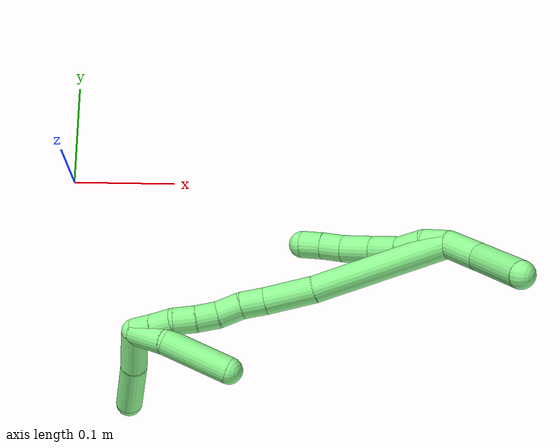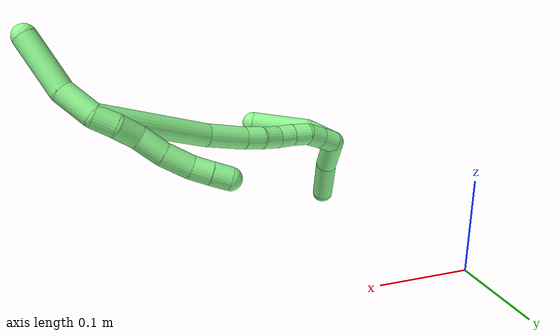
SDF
<sdf version="1.7">
 <world name="default">
  <model name="13">
   <static>0</static>
   <link name="13">
    <collision name="collision-cylinder-e_1_2_8">
     <pose>-0.001089 -0.001057 -0.011495 3.04986 -0.094092 -1.59625</pose>
     <geometry><cylinder><radius>0.0125</radius><length>0.023189</length></cylinder></geometry>
     <surface>
      <friction><ode><mu>1.16</mu><mu2>1.16</mu2><slip1>0</slip1><slip2>0</slip2></ode></friction>
      <contact><ode><kp>1e+06</kp><kd>1</kd><max_vel>0</max_vel><min_depth>0.001</min_depth></ode></contact>
     </surface>
    </collision>
    <visual name="visual-cylinder-e_1_2_8">
     <pose>-0.001089 -0.001057 -0.011495 3.04986 -0.094092 -1.59625</pose>
     <geometry><cylinder><radius>0.0125</radius><length>0.023189</length></cylinder></geometry>
     <material><ambient>0.564706 0.984314 0.572549 1</ambient></material>
    </visual>
    <collision name="collision-cylinder-e_2_8_9">
     <pose>-0.003274 -0.006946 -0.034253 2.7364 -0.089169 -0.427741</pose>
     <geometry><cylinder><radius>0.0125</radius><length>0.02461</length></cylinder></geometry>
     <surface>
      <friction><ode><mu>1.16</mu><mu2>1.16</mu2><slip1>0</slip1><slip2>0</slip2></ode></friction>
      <contact><ode><kp>1e+06</kp><kd>1</kd><max_vel>0</max_vel><min_depth>0.001</min_depth></ode></contact>
     </surface>
    </collision>
    <visual name="visual-cylinder-e_2_8_9">
     <pose>-0.003274 -0.006946 -0.034253 2.7364 -0.089169 -0.427741</pose>
     <geometry><cylinder><radius>0.0125</radius><length>0.02461</length></cylinder></geometry>
     <material><ambient>0.564706 0.984314 0.572549 1</ambient></material>
    </visual>
    <collision name="collision-cylinder-e_3_9_10">
     <pose>-0.003048 -0.013778 -0.060068 3.00493 0.089768 1.16154</pose>
     <geometry><cylinder><radius>0.0125</radius><length>0.029496</length></cylinder></geometry>
     <surface>
      <friction><ode><mu>1.16</mu><mu2>1.16</mu2><slip1>0</slip1><slip2>0</slip2></ode></friction>
      <contact><ode><kp>1e+06</kp><kd>1</kd><max_vel>0</max_vel><min_depth>0.001</min_depth></ode></contact>
     </surface>
    </collision>
    <visual name="visual-cylinder-e_3_9_10">
     <pose>-0.003048 -0.013778 -0.060068 3.00493 0.089768 1.16154</pose>
     <geometry><cylinder><radius>0.0125</radius><length>0.029496</length></cylinder></geometry>
     <material><ambient>0.564706 0.984314 0.572549 1</ambient></material>
    </visual>
    <collision name="collision-cylinder-e_4_10_11">
     <pose>-0.002806 -0.017486 -0.090003 3.03114 -0.069692 -1.12523</pose>
     <geometry><cylinder><radius>0.0125</radius><length>0.031031</length></cylinder></geometry>
     <surface>
      <friction><ode><mu>1.16</mu><mu2>1.16</mu2><slip1>0</slip1><slip2>0</slip2></ode></friction>
      <contact><ode><kp>1e+06</kp><kd>1</kd><max_vel>0</max_vel><min_depth>0.001</min_depth></ode></contact>
     </surface>
    </collision>
    <visual name="visual-cylinder-e_4_10_11">
     <pose>-0.002806 -0.017486 -0.090003 3.03114 -0.069692 -1.12523</pose>
     <geometry><cylinder><radius>0.0125</radius><length>0.031031</length></cylinder></geometry>
     <material><ambient>0.564706 0.984314 0.572549 1</ambient></material>
    </visual>
    <collision name="collision-cylinder-e_5_11_12">
     <pose>-0.005982 -0.019134 -0.115703 -3.13599 -0.200402 3.08589</pose>
     <geometry><cylinder><radius>0.0125</radius><length>0.021054</length></cylinder></geometry>
     <surface>
      <friction><ode><mu>1.16</mu><mu2>1.16</mu2><slip1>0</slip1><slip2>0</slip2></ode></friction>
      <contact><ode><kp>1e+06</kp><kd>1</kd><max_vel>0</max_vel><min_depth>0.001</min_depth></ode></contact>
     </surface>
    </collision>
    <visual name="visual-cylinder-e_5_11_12">
     <pose>-0.005982 -0.019134 -0.115703 -3.13599 -0.200402 3.08589</pose>
     <geometry><cylinder><radius>0.0125</radius><length>0.021054</length></cylinder></geometry>
     <material><ambient>0.564706 0.984314 0.572549 1</ambient></material>
    </visual>
    <collision name="collision-cylinder-e_6_12_6">
     <pose>-0.010391 -0.01958 -0.136054 3.09139 -0.226264 -2.70659</pose>
     <geometry><cylinder><radius>0.0125</radius><length>0.02062</length></cylinder></geometry>
     <surface>
      <friction><ode><mu>1.16</mu><mu2>1.16</mu2><slip1>0</slip1><slip2>0</slip2></ode></friction>
      <contact><ode><kp>1e+06</kp><kd>1</kd><max_vel>0</max_vel><min_depth>0.001</min_depth></ode></contact>
     </surface>
    </collision>
    <visual name="visual-cylinder-e_6_12_6">
     <pose>-0.010391 -0.01958 -0.136054 3.09139 -0.226264 -2.70659</pose>
     <geometry><cylinder><radius>0.0125</radius><length>0.02062</length></cylinder></geometry>
     <material><ambient>0.564706 0.984314 0.572549 1</ambient></material>
    </visual>
    <collision name="collision-cylinder-e_1_2_13">
     <pose>-0.003751 -0.002771 0.018064 0.15219 -0.202432 -0.015486</pose>
     <geometry><cylinder><radius>0.0125</radius><length>0.037313</length></cylinder></geometry>
     <surface>
      <friction><ode><mu>1.16</mu><mu2>1.16</mu2><slip1>0</slip1><slip2>0</slip2></ode></friction>
      <contact><ode><kp>1e+06</kp><kd>1</kd><max_vel>0</max_vel><min_depth>0.001</min_depth></ode></contact>
     </surface>
    </collision>
    <visual name="visual-cylinder-e_1_2_13">
     <pose>-0.003751 -0.002771 0.018064 0.15219 -0.202432 -0.015486</pose>
     <geometry><cylinder><radius>0.0125</radius><length>0.037313</length></cylinder></geometry>
     <material><ambient>0.564706 0.984314 0.572549 1</ambient></material>
    </visual>
    <collision name="collision-cylinder-e_2_13_5">
     <pose>-0.022402 -0.007136 0.063658 0.057878 -0.495381 -0.01464</pose>
     <geometry><cylinder><radius>0.0125</radius><length>0.062687</length></cylinder></geometry>
     <surface>
      <friction><ode><mu>1.16</mu><mu2>1.16</mu2><slip1>0</slip1><slip2>0</slip2></ode></friction>
      <contact><ode><kp>1e+06</kp><kd>1</kd><max_vel>0</max_vel><min_depth>0.001</min_depth></ode></contact>
     </surface>
    </collision>
    <visual name="visual-cylinder-e_2_13_5">
     <pose>-0.022402 -0.007136 0.063658 0.057878 -0.495381 -0.01464</pose>
     <geometry><cylinder><radius>0.0125</radius><length>0.062687</length></cylinder></geometry>
     <material><ambient>0.564706 0.984314 0.572549 1</ambient></material>
    </visual>
    <collision name="collision-cylinder-e_1_2_14">
     <pose>-0.02374 -0.02586 -0.053094 2.68835 -0.382224 -1.39623</pose>
     <geometry><cylinder><radius>0.0125</radius><length>0.127299</length></cylinder></geometry>
     <surface>
      <friction><ode><mu>1.16</mu><mu2>1.16</mu2><slip1>0</slip1><slip2>0</slip2></ode></friction>
      <contact><ode><kp>1e+06</kp><kd>1</kd><max_vel>0</max_vel><min_depth>0.001</min_depth></ode></contact>
     </surface>
    </collision>
    <visual name="visual-cylinder-e_1_2_14">
     <pose>-0.02374 -0.02586 -0.053094 2.68835 -0.382224 -1.39623</pose>
     <geometry><cylinder><radius>0.0125</radius><length>0.127299</length></cylinder></geometry>
     <material><ambient>0.564706 0.984314 0.572549 1</ambient></material>
    </visual>
    <collision name="collision-cylinder-e_2_14_15">
     <pose>-0.057842 -0.058959 -0.125627 2.7851 -0.463237 -1.83697</pose>
     <geometry><cylinder><radius>0.0125</radius><length>0.046375</length></cylinder></geometry>
     <surface>
      <friction><ode><mu>1.16</mu><mu2>1.16</mu2><slip1>0</slip1><slip2>0</slip2></ode></friction>
      <contact><ode><kp>1e+06</kp><kd>1</kd><max_vel>0</max_vel><min_depth>0.001</min_depth></ode></contact>
     </surface>
    </collision>
    <visual name="visual-cylinder-e_2_14_15">
     <pose>-0.057842 -0.058959 -0.125627 2.7851 -0.463237 -1.83697</pose>
     <geometry><cylinder><radius>0.0125</radius><length>0.046375</length></cylinder></geometry>
     <material><ambient>0.564706 0.984314 0.572549 1</ambient></material>
    </visual>
    <collision name="collision-cylinder-e_3_15_16">
     <pose>-0.073897 -0.069064 -0.154322 2.84132 -0.531265 -2.12668</pose>
     <geometry><cylinder><radius>0.0125</radius><length>0.022475</length></cylinder></geometry>
     <surface>
      <friction><ode><mu>1.16</mu><mu2>1.16</mu2><slip1>0</slip1><slip2>0</slip2></ode></friction>
      <contact><ode><kp>1e+06</kp><kd>1</kd><max_vel>0</max_vel><min_depth>0.001</min_depth></ode></contact>
     </surface>
    </collision>
    <visual name="visual-cylinder-e_3_15_16">
     <pose>-0.073897 -0.069064 -0.154322 2.84132 -0.531265 -2.12668</pose>
     <geometry><cylinder><radius>0.0125</radius><length>0.022475</length></cylinder></geometry>
     <material><ambient>0.564706 0.984314 0.572549 1</ambient></material>
    </visual>
    <collision name="collision-cylinder-e_4_16_17">
     <pose>-0.085544 -0.076821 -0.171866 2.60841 -0.554034 -1.61111</pose>
     <geometry><cylinder><radius>0.0125</radius><length>0.022633</length></cylinder></geometry>
     <surface>
      <friction><ode><mu>1.16</mu><mu2>1.16</mu2><slip1>0</slip1><slip2>0</slip2></ode></friction>
      <contact><ode><kp>1e+06</kp><kd>1</kd><max_vel>0</max_vel><min_depth>0.001</min_depth></ode></contact>
     </surface>
    </collision>
    <visual name="visual-cylinder-e_4_16_17">
     <pose>-0.085544 -0.076821 -0.171866 2.60841 -0.554034 -1.61111</pose>
     <geometry><cylinder><radius>0.0125</radius><length>0.022633</length></cylinder></geometry>
     <material><ambient>0.564706 0.984314 0.572549 1</ambient></material>
    </visual>
    <collision name="collision-cylinder-e_5_17_18">
     <pose>-0.097624 -0.084107 -0.187861 2.84032 -0.649296 -2.29422</pose>
     <geometry><cylinder><radius>0.0125</radius><length>0.020266</length></cylinder></geometry>
     <surface>
      <friction><ode><mu>1.16</mu><mu2>1.16</mu2><slip1>0</slip1><slip2>0</slip2></ode></friction>
      <contact><ode><kp>1e+06</kp><kd>1</kd><max_vel>0</max_vel><min_depth>0.001</min_depth></ode></contact>
     </surface>
    </collision>
    <visual name="visual-cylinder-e_5_17_18">
     <pose>-0.097624 -0.084107 -0.187861 2.84032 -0.649296 -2.29422</pose>
     <geometry><cylinder><radius>0.0125</radius><length>0.020266</length></cylinder></geometry>
     <material><ambient>0.564706 0.984314 0.572549 1</ambient></material>
    </visual>
    <collision name="collision-cylinder-e_6_18_19">
     <pose>-0.109516 -0.088197 -0.204009 2.94345 -0.590074 -2.50939</pose>
     <geometry><cylinder><radius>0.0125</radius><length>0.020722</length></cylinder></geometry>
     <surface>
      <friction><ode><mu>1.16</mu><mu2>1.16</mu2><slip1>0</slip1><slip2>0</slip2></ode></friction>
      <contact><ode><kp>1e+06</kp><kd>1</kd><max_vel>0</max_vel><min_depth>0.001</min_depth></ode></contact>
     </surface>
    </collision>
    <visual name="visual-cylinder-e_6_18_19">
     <pose>-0.109516 -0.088197 -0.204009 2.94345 -0.590074 -2.50939</pose>
     <geometry><cylinder><radius>0.0125</radius><length>0.020722</length></cylinder></geometry>
     <material><ambient>0.564706 0.984314 0.572549 1</ambient></material>
    </visual>
    <collision name="collision-cylinder-e_7_19_20">
     <pose>-0.118396 -0.093671 -0.221253 2.7361 -0.314345 -1.31351</pose>
     <geometry><cylinder><radius>0.0125</radius><length>0.020149</length></cylinder></geometry>
     <surface>
      <friction><ode><mu>1.16</mu><mu2>1.16</mu2><slip1>0</slip1><slip2>0</slip2></ode></friction>
      <contact><ode><kp>1e+06</kp><kd>1</kd><max_vel>0</max_vel><min_depth>0.001</min_depth></ode></contact>
     </surface>
    </collision>
    <visual name="visual-cylinder-e_7_19_20">
     <pose>-0.118396 -0.093671 -0.221253 2.7361 -0.314345 -1.31351</pose>
     <geometry><cylinder><radius>0.0125</radius><length>0.020149</length></cylinder></geometry>
     <material><ambient>0.564706 0.984314 0.572549 1</ambient></material>
    </visual>
    <collision name="collision-cylinder-e_8_20_1">
     <pose>-0.124163 -0.100804 -0.239141 2.788 -0.267307 -1.29027</pose>
     <geometry><cylinder><radius>0.0125</radius><length>0.02008</length></cylinder></geometry>
     <surface>
      <friction><ode><mu>1.16</mu><mu2>1.16</mu2><slip1>0</slip1><slip2>0</slip2></ode></friction>
      <contact><ode><kp>1e+06</kp><kd>1</kd><max_vel>0</max_vel><min_depth>0.001</min_depth></ode></contact>
     </surface>
    </collision>
    <visual name="visual-cylinder-e_8_20_1">
     <pose>-0.124163 -0.100804 -0.239141 2.788 -0.267307 -1.29027</pose>
     <geometry><cylinder><radius>0.0125</radius><length>0.02008</length></cylinder></geometry>
     <material><ambient>0.564706 0.984314 0.572549 1</ambient></material>
    </visual>
    <collision name="collision-cylinder-e_1_1_21">
     <pose>-0.125851 -0.105709 -0.230928 0.089482 0.05543 0.002482</pose>
     <geometry><cylinder><radius>0.0125</radius><length>0.034787</length></cylinder></geometry>
     <surface>
      <friction><ode><mu>1.16</mu><mu2>1.16</mu2><slip1>0</slip1><slip2>0</slip2></ode></friction>
      <contact><ode><kp>1e+06</kp><kd>1</kd><max_vel>0</max_vel><min_depth>0.001</min_depth></ode></contact>
     </surface>
    </collision>
    <visual name="visual-cylinder-e_1_1_21">
     <pose>-0.125851 -0.105709 -0.230928 0.089482 0.05543 0.002482</pose>
     <geometry><cylinder><radius>0.0125</radius><length>0.034787</length></cylinder></geometry>
     <material><ambient>0.564706 0.984314 0.572549 1</ambient></material>
    </visual>
    <collision name="collision-cylinder-e_2_21_4">
     <pose>-0.115135 -0.116835 -0.184027 0.31279 0.303755 0.048259</pose>
     <geometry><cylinder><radius>0.0125</radius><length>0.065213</length></cylinder></geometry>
     <surface>
      <friction><ode><mu>1.16</mu><mu2>1.16</mu2><slip1>0</slip1><slip2>0</slip2></ode></friction>
      <contact><ode><kp>1e+06</kp><kd>1</kd><max_vel>0</max_vel><min_depth>0.001</min_depth></ode></contact>
     </surface>
    </collision>
    <visual name="visual-cylinder-e_2_21_4">
     <pose>-0.115135 -0.116835 -0.184027 0.31279 0.303755 0.048259</pose>
     <geometry><cylinder><radius>0.0125</radius><length>0.065213</length></cylinder></geometry>
     <material><ambient>0.564706 0.984314 0.572549 1</ambient></material>
    </visual>
    <collision name="collision-cylinder-e_1_1_22">
     <pose>-0.118243 -0.123143 -0.255154 1.92068 0.40115 0.565634</pose>
     <geometry><cylinder><radius>0.0125</radius><length>0.043907</length></cylinder></geometry>
     <surface>
      <friction><ode><mu>1.16</mu><mu2>1.16</mu2><slip1>0</slip1><slip2>0</slip2></ode></friction>
      <contact><ode><kp>1e+06</kp><kd>1</kd><max_vel>0</max_vel><min_depth>0.001</min_depth></ode></contact>
     </surface>
    </collision>
    <visual name="visual-cylinder-e_1_1_22">
     <pose>-0.118243 -0.123143 -0.255154 1.92068 0.40115 0.565634</pose>
     <geometry><cylinder><radius>0.0125</radius><length>0.043907</length></cylinder></geometry>
     <material><ambient>0.564706 0.984314 0.572549 1</ambient></material>
    </visual>
    <collision name="collision-cylinder-e_2_22_3">
     <pose>-0.097895 -0.164654 -0.273938 2.05533 0.433271 0.699194</pose>
     <geometry><cylinder><radius>0.0125</radius><length>0.056093</length></cylinder></geometry>
     <surface>
      <friction><ode><mu>1.16</mu><mu2>1.16</mu2><slip1>0</slip1><slip2>0</slip2></ode></friction>
      <contact><ode><kp>1e+06</kp><kd>1</kd><max_vel>0</max_vel><min_depth>0.001</min_depth></ode></contact>
     </surface>
    </collision>
    <visual name="visual-cylinder-e_2_22_3">
     <pose>-0.097895 -0.164654 -0.273938 2.05533 0.433271 0.699194</pose>
     <geometry><cylinder><radius>0.0125</radius><length>0.056093</length></cylinder></geometry>
     <material><ambient>0.564706 0.984314 0.572549 1</ambient></material>
    </visual>
    <collision name="collision-sphere-3">
     <pose>-0.08612 -0.187179 -0.285795 0 -0 0</pose>
     <geometry><sphere><radius>0.0125</radius></sphere></geometry>
     <surface>
      <friction><ode><mu>1.16</mu><mu2>1.16</mu2><slip1>0</slip1><slip2>0</slip2></ode></friction>
      <contact><ode><kp>1e+06</kp><kd>1</kd><max_vel>0</max_vel><min_depth>0.001</min_depth></ode></contact>
     </surface>
    </collision>
    <visual name="visual-sphere-3">
     <pose>-0.08612 -0.187179 -0.285795 0 -0 0</pose>
     <geometry><sphere><radius>0.0125</radius></sphere></geometry>
     <material><ambient>0.564706 0.984314 0.572549 1</ambient></material>
    </visual>
    <collision name="collision-sphere-22">
     <pose>-0.10967 -0.142129 -0.262082 0 -0 0</pose>
     <geometry><sphere><radius>0.0125</radius></sphere></geometry>
     <surface>
      <friction><ode><mu>1.16</mu><mu2>1.16</mu2><slip1>0</slip1><slip2>0</slip2></ode></friction>
      <contact><ode><kp>1e+06</kp><kd>1</kd><max_vel>0</max_vel><min_depth>0.001</min_depth></ode></contact>
     </surface>
    </collision>
    <visual name="visual-sphere-22">
     <pose>-0.10967 -0.142129 -0.262082 0 -0 0</pose>
     <geometry><sphere><radius>0.0125</radius></sphere></geometry>
     <material><ambient>0.564706 0.984314 0.572549 1</ambient></material>
    </visual>
    <collision name="collision-sphere-4">
     <pose>-0.105382 -0.126409 -0.154423 0 -0 0</pose>
     <geometry><sphere><radius>0.0125</radius></sphere></geometry>
     <surface>
      <friction><ode><mu>1.16</mu><mu2>1.16</mu2><slip1>0</slip1><slip2>0</slip2></ode></friction>
      <contact><ode><kp>1e+06</kp><kd>1</kd><max_vel>0</max_vel><min_depth>0.001</min_depth></ode></contact>
     </surface>
    </collision>
    <visual name="visual-sphere-4">
     <pose>-0.105382 -0.126409 -0.154423 0 -0 0</pose>
     <geometry><sphere><radius>0.0125</radius></sphere></geometry>
     <material><ambient>0.564706 0.984314 0.572549 1</ambient></material>
    </visual>
    <collision name="collision-sphere-21">
     <pose>-0.124888 -0.107261 -0.213631 0 -0 0</pose>
     <geometry><sphere><radius>0.0125</radius></sphere></geometry>
     <surface>
      <friction><ode><mu>1.16</mu><mu2>1.16</mu2><slip1>0</slip1><slip2>0</slip2></ode></friction>
      <contact><ode><kp>1e+06</kp><kd>1</kd><max_vel>0</max_vel><min_depth>0.001</min_depth></ode></contact>
     </surface>
    </collision>
    <visual name="visual-sphere-21">
     <pose>-0.124888 -0.107261 -0.213631 0 -0 0</pose>
     <geometry><sphere><radius>0.0125</radius></sphere></geometry>
     <material><ambient>0.564706 0.984314 0.572549 1</ambient></material>
    </visual>
    <collision name="collision-sphere-1">
     <pose>-0.126815 -0.104157 -0.248226 0 -0 0</pose>
     <geometry><sphere><radius>0.0125</radius></sphere></geometry>
     <surface>
      <friction><ode><mu>1.16</mu><mu2>1.16</mu2><slip1>0</slip1><slip2>0</slip2></ode></friction>
      <contact><ode><kp>1e+06</kp><kd>1</kd><max_vel>0</max_vel><min_depth>0.001</min_depth></ode></contact>
     </surface>
    </collision>
    <visual name="visual-sphere-1">
     <pose>-0.126815 -0.104157 -0.248226 0 -0 0</pose>
     <geometry><sphere><radius>0.0125</radius></sphere></geometry>
     <material><ambient>0.564706 0.984314 0.572549 1</ambient></material>
    </visual>
    <collision name="collision-sphere-12">
     <pose>-0.008078 -0.019076 -0.126019 0 -0 0</pose>
     <geometry><sphere><radius>0.0125</radius></sphere></geometry>
     <surface>
      <friction><ode><mu>1.16</mu><mu2>1.16</mu2><slip1>0</slip1><slip2>0</slip2></ode></friction>
      <contact><ode><kp>1e+06</kp><kd>1</kd><max_vel>0</max_vel><min_depth>0.001</min_depth></ode></contact>
     </surface>
    </collision>
    <visual name="visual-sphere-12">
     <pose>-0.008078 -0.019076 -0.126019 0 -0 0</pose>
     <geometry><sphere><radius>0.0125</radius></sphere></geometry>
     <material><ambient>0.564706 0.984314 0.572549 1</ambient></material>
    </visual>
    <collision name="collision-sphere-11">
     <pose>-0.003887 -0.019192 -0.105387 0 -0 0</pose>
     <geometry><sphere><radius>0.0125</radius></sphere></geometry>
     <surface>
      <friction><ode><mu>1.16</mu><mu2>1.16</mu2><slip1>0</slip1><slip2>0</slip2></ode></friction>
      <contact><ode><kp>1e+06</kp><kd>1</kd><max_vel>0</max_vel><min_depth>0.001</min_depth></ode></contact>
     </surface>
    </collision>
    <visual name="visual-sphere-11">
     <pose>-0.003887 -0.019192 -0.105387 0 -0 0</pose>
     <geometry><sphere><radius>0.0125</radius></sphere></geometry>
     <material><ambient>0.564706 0.984314 0.572549 1</ambient></material>
    </visual>
    <collision name="collision-sphere-10">
     <pose>-0.001726 -0.01578 -0.07462 0 -0 0</pose>
     <geometry><sphere><radius>0.0125</radius></sphere></geometry>
     <surface>
      <friction><ode><mu>1.16</mu><mu2>1.16</mu2><slip1>0</slip1><slip2>0</slip2></ode></friction>
      <contact><ode><kp>1e+06</kp><kd>1</kd><max_vel>0</max_vel><min_depth>0.001</min_depth></ode></contact>
     </surface>
    </collision>
    <visual name="visual-sphere-10">
     <pose>-0.001726 -0.01578 -0.07462 0 -0 0</pose>
     <geometry><sphere><radius>0.0125</radius></sphere></geometry>
     <material><ambient>0.564706 0.984314 0.572549 1</ambient></material>
    </visual>
    <collision name="collision-sphere-9">
     <pose>-0.00437 -0.011777 -0.045516 0 -0 0</pose>
     <geometry><sphere><radius>0.0125</radius></sphere></geometry>
     <surface>
      <friction><ode><mu>1.16</mu><mu2>1.16</mu2><slip1>0</slip1><slip2>0</slip2></ode></friction>
      <contact><ode><kp>1e+06</kp><kd>1</kd><max_vel>0</max_vel><min_depth>0.001</min_depth></ode></contact>
     </surface>
    </collision>
    <visual name="visual-sphere-9">
     <pose>-0.00437 -0.011777 -0.045516 0 -0 0</pose>
     <geometry><sphere><radius>0.0125</radius></sphere></geometry>
     <material><ambient>0.564706 0.984314 0.572549 1</ambient></material>
    </visual>
    <collision name="collision-sphere-2">
     <geometry><sphere><radius>0.0125</radius></sphere></geometry>
     <surface>
      <friction><ode><mu>1.16</mu><mu2>1.16</mu2><slip1>0</slip1><slip2>0</slip2></ode></friction>
      <contact><ode><kp>1e+06</kp><kd>1</kd><max_vel>0</max_vel><min_depth>0.001</min_depth></ode></contact>
     </surface>
    </collision>
    <visual name="visual-sphere-2">
     <geometry><sphere><radius>0.0125</radius></sphere></geometry>
     <material><ambient>0.564706 0.984314 0.572549 1</ambient></material>
    </visual>
    <collision name="collision-sphere-19">
     <pose>-0.115281 -0.089892 -0.212449 0 -0 0</pose>
     <geometry><sphere><radius>0.0125</radius></sphere></geometry>
     <surface>
      <friction><ode><mu>1.16</mu><mu2>1.16</mu2><slip1>0</slip1><slip2>0</slip2></ode></friction>
      <contact><ode><kp>1e+06</kp><kd>1</kd><max_vel>0</max_vel><min_depth>0.001</min_depth></ode></contact>
     </surface>
    </collision>
    <visual name="visual-sphere-19">
     <pose>-0.115281 -0.089892 -0.212449 0 -0 0</pose>
     <geometry><sphere><radius>0.0125</radius></sphere></geometry>
     <material><ambient>0.564706 0.984314 0.572549 1</ambient></material>
    </visual>
    <collision name="collision-sphere-8">
     <pose>-0.002179 -0.002115 -0.022989 0 -0 0</pose>
     <geometry><sphere><radius>0.0125</radius></sphere></geometry>
     <surface>
      <friction><ode><mu>1.16</mu><mu2>1.16</mu2><slip1>0</slip1><slip2>0</slip2></ode></friction>
      <contact><ode><kp>1e+06</kp><kd>1</kd><max_vel>0</max_vel><min_depth>0.001</min_depth></ode></contact>
     </surface>
    </collision>
    <visual name="visual-sphere-8">
     <pose>-0.002179 -0.002115 -0.022989 0 -0 0</pose>
     <geometry><sphere><radius>0.0125</radius></sphere></geometry>
     <material><ambient>0.564706 0.984314 0.572549 1</ambient></material>
    </visual>
    <collision name="collision-sphere-6">
     <pose>-0.012704 -0.020085 -0.146089 0 -0 0</pose>
     <geometry><sphere><radius>0.0125</radius></sphere></geometry>
     <surface>
      <friction><ode><mu>1.16</mu><mu2>1.16</mu2><slip1>0</slip1><slip2>0</slip2></ode></friction>
      <contact><ode><kp>1e+06</kp><kd>1</kd><max_vel>0</max_vel><min_depth>0.001</min_depth></ode></contact>
     </surface>
    </collision>
    <visual name="visual-sphere-6">
     <pose>-0.012704 -0.020085 -0.146089 0 -0 0</pose>
     <geometry><sphere><radius>0.0125</radius></sphere></geometry>
     <material><ambient>0.564706 0.984314 0.572549 1</ambient></material>
    </visual>
    <collision name="collision-sphere-13">
     <pose>-0.007502 -0.005541 0.036129 0 -0 0</pose>
     <geometry><sphere><radius>0.0125</radius></sphere></geometry>
     <surface>
      <friction><ode><mu>1.16</mu><mu2>1.16</mu2><slip1>0</slip1><slip2>0</slip2></ode></friction>
      <contact><ode><kp>1e+06</kp><kd>1</kd><max_vel>0</max_vel><min_depth>0.001</min_depth></ode></contact>
     </surface>
    </collision>
    <visual name="visual-sphere-13">
     <pose>-0.007502 -0.005541 0.036129 0 -0 0</pose>
     <geometry><sphere><radius>0.0125</radius></sphere></geometry>
     <material><ambient>0.564706 0.984314 0.572549 1</ambient></material>
    </visual>
    <collision name="collision-sphere-5">
     <pose>-0.037301 -0.008732 0.091188 0 -0 0</pose>
     <geometry><sphere><radius>0.0125</radius></sphere></geometry>
     <surface>
      <friction><ode><mu>1.16</mu><mu2>1.16</mu2><slip1>0</slip1><slip2>0</slip2></ode></friction>
      <contact><ode><kp>1e+06</kp><kd>1</kd><max_vel>0</max_vel><min_depth>0.001</min_depth></ode></contact>
     </surface>
    </collision>
    <visual name="visual-sphere-5">
     <pose>-0.037301 -0.008732 0.091188 0 -0 0</pose>
     <geometry><sphere><radius>0.0125</radius></sphere></geometry>
     <material><ambient>0.564706 0.984314 0.572549 1</ambient></material>
    </visual>
    <collision name="collision-sphere-14">
     <pose>-0.047481 -0.051719 -0.106188 0 -0 0</pose>
     <geometry><sphere><radius>0.0125</radius></sphere></geometry>
     <surface>
      <friction><ode><mu>1.16</mu><mu2>1.16</mu2><slip1>0</slip1><slip2>0</slip2></ode></friction>
      <contact><ode><kp>1e+06</kp><kd>1</kd><max_vel>0</max_vel><min_depth>0.001</min_depth></ode></contact>
     </surface>
    </collision>
    <visual name="visual-sphere-14">
     <pose>-0.047481 -0.051719 -0.106188 0 -0 0</pose>
     <geometry><sphere><radius>0.0125</radius></sphere></geometry>
     <material><ambient>0.564706 0.984314 0.572549 1</ambient></material>
    </visual>
    <collision name="collision-sphere-15">
     <pose>-0.068203 -0.066198 -0.145067 0 -0 0</pose>
     <geometry><sphere><radius>0.0125</radius></sphere></geometry>
     <surface>
      <friction><ode><mu>1.16</mu><mu2>1.16</mu2><slip1>0</slip1><slip2>0</slip2></ode></friction>
      <contact><ode><kp>1e+06</kp><kd>1</kd><max_vel>0</max_vel><min_depth>0.001</min_depth></ode></contact>
     </surface>
    </collision>
    <visual name="visual-sphere-15">
     <pose>-0.068203 -0.066198 -0.145067 0 -0 0</pose>
     <geometry><sphere><radius>0.0125</radius></sphere></geometry>
     <material><ambient>0.564706 0.984314 0.572549 1</ambient></material>
    </visual>
    <collision name="collision-sphere-16">
     <pose>-0.07959 -0.07193 -0.163578 0 -0 0</pose>
     <geometry><sphere><radius>0.0125</radius></sphere></geometry>
     <surface>
      <friction><ode><mu>1.16</mu><mu2>1.16</mu2><slip1>0</slip1><slip2>0</slip2></ode></friction>
      <contact><ode><kp>1e+06</kp><kd>1</kd><max_vel>0</max_vel><min_depth>0.001</min_depth></ode></contact>
     </surface>
    </collision>
    <visual name="visual-sphere-16">
     <pose>-0.07959 -0.07193 -0.163578 0 -0 0</pose>
     <geometry><sphere><radius>0.0125</radius></sphere></geometry>
     <material><ambient>0.564706 0.984314 0.572549 1</ambient></material>
    </visual>
    <collision name="collision-sphere-17">
     <pose>-0.091498 -0.081712 -0.180153 0 -0 0</pose>
     <geometry><sphere><radius>0.0125</radius></sphere></geometry>
     <surface>
      <friction><ode><mu>1.16</mu><mu2>1.16</mu2><slip1>0</slip1><slip2>0</slip2></ode></friction>
      <contact><ode><kp>1e+06</kp><kd>1</kd><max_vel>0</max_vel><min_depth>0.001</min_depth></ode></contact>
     </surface>
    </collision>
    <visual name="visual-sphere-17">
     <pose>-0.091498 -0.081712 -0.180153 0 -0 0</pose>
     <geometry><sphere><radius>0.0125</radius></sphere></geometry>
     <material><ambient>0.564706 0.984314 0.572549 1</ambient></material>
    </visual>
    <collision name="collision-sphere-18">
     <pose>-0.103751 -0.086502 -0.195568 0 -0 0</pose>
     <geometry><sphere><radius>0.0125</radius></sphere></geometry>
     <surface>
      <friction><ode><mu>1.16</mu><mu2>1.16</mu2><slip1>0</slip1><slip2>0</slip2></ode></friction>
      <contact><ode><kp>1e+06</kp><kd>1</kd><max_vel>0</max_vel><min_depth>0.001</min_depth></ode></contact>
     </surface>
    </collision>
    <visual name="visual-sphere-18">
     <pose>-0.103751 -0.086502 -0.195568 0 -0 0</pose>
     <geometry><sphere><radius>0.0125</radius></sphere></geometry>
     <material><ambient>0.564706 0.984314 0.572549 1</ambient></material>
    </visual>
    <collision name="collision-sphere-20">
     <pose>-0.121511 -0.09745 -0.230057 0 -0 0</pose>
     <geometry><sphere><radius>0.0125</radius></sphere></geometry>
     <surface>
      <friction><ode><mu>1.16</mu><mu2>1.16</mu2><slip1>0</slip1><slip2>0</slip2></ode></friction>
      <contact><ode><kp>1e+06</kp><kd>1</kd><max_vel>0</max_vel><min_depth>0.001</min_depth></ode></contact>
     </surface>
    </collision>
    <visual name="visual-sphere-20">
     <pose>-0.121511 -0.09745 -0.230057 0 -0 0</pose>
     <geometry><sphere><radius>0.0125</radius></sphere></geometry>
     <material><ambient>0.564706 0.984314 0.572549 1</ambient></material>
    </visual>
    <inertial>
     <pose>-0.057553 -0.060269 -0.120123 0 -0 0</pose>
     <mass>0.75</mass>
     <inertia>
      <ixx>-7.5e-05</ixx>
      <ixy>0</ixy>
      <ixz>0</ixz>
      <iyy>-0.000123</iyy>
      <iyz>0</iyz>
      <izz>0.000161</izz>
     </inertia>
    </inertial>
   </link>
   <pose>0.357068 -0.106518 0.172253 0.700354 0.850752 0.519</pose>
  </model>
 </world>
</sdf>
